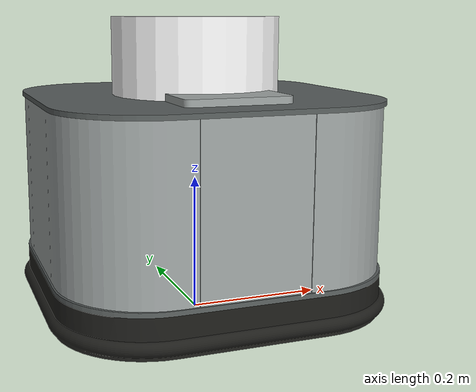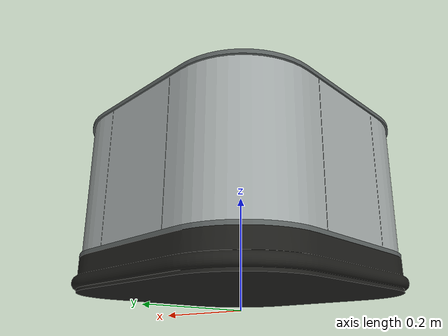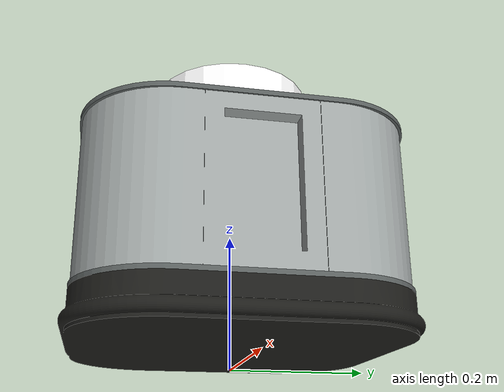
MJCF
<mujoco model="base">
  <compiler angle="radian"/>

  <option integrator="implicitfast"/>

  <default>
    <default class="visual">
      <geom type="mesh" contype="0" conaffinity="0" group="1"/>
    </default>
    <default class="collision">
      <geom type="mesh" group="0"/>
    </default>
  </default>

  <asset>
    <material name="black" rgba="0.11372549 0.11372549 0.10196078 1"/>
    <material name="gray" rgba="0.62745098 0.65098039 0.64705882 1"/>
    <material name="dark_gray" rgba="0.35294118 0.37647059 0.37254902 1"/>
    <mesh name="bumper" file="assets/base/bumper.stl"/>
    <mesh name="bottom_plate" file="assets/base/bottom_plate.stl"/>
    <mesh name="body" file="assets/base/body.stl"/>
    <mesh name="top_plate" file="assets/base/top_plate.stl"/>
    <mesh name="arm_plate" file="assets/base/arm_plate.stl"/>
    <material name="Shell005_001_001_002_001" specular="0.5" shininess="0.45" rgba="1.000000 1.000000 1.000000 1.000000"/>
  </asset>

  <worldbody>
    <body name="base_link">
      <inertial pos="0 0 0.035" mass="60" diaginertia="0.001 0.001 0.001"/>

      <body name="fixed_support" pos="0 0 0.335">
				<geom type="cylinder" pos="0 0 0" size="0.12 0.1 0" group="0" material="Shell005_001_001_002_001"/>
        <geom name="fixed_support" type="cylinder" pos="0 0 0" size="0.12 0.1 0" group="1" material="Shell005_001_001_002_001"/>
        <body name="support" pos="0 0 0.10">
          <site name="center" type="sphere" pos="0 0 0" size="0.01" group="1" rgba="0 0 0 0"/>
        </body>
      </body>

      <body name="wheeled_base" pos="0 0 0">
        <geom name="bump_vis" class="visual" mesh="bumper" material="black"/>
        <geom name="bottom_plate_vis" class="visual" mesh="bottom_plate" material="dark_gray"/>
        <geom name="body_vis" class="visual" mesh="body" material="gray"/>
        <geom name="top_plate_vis" class="visual" mesh="top_plate" material="dark_gray"/>
        <geom name="arm_plate_vis" class="visual" mesh="arm_plate" material="gray"/>
        <geom name="bumper_c" class="collision" mesh="bumper"/>
        <geom name="bottom_plate_c" class="collision" mesh="bottom_plate"/>
        <geom name="body_c" class="collision" mesh="body"/>
        <geom name="top_plate_c" class="collision" mesh="top_plate"/>
        <geom name="arm_plate_c" class="collision" mesh="arm_plate"/>
      </body>
      <joint name="joint_forward" type="slide" axis="0 1 0" frictionloss="250"/>
      <joint name="joint_side" type="slide" axis="1 0 0" frictionloss="250"/>
      <joint name="joint_yaw" type="hinge" axis="0 0 1" frictionloss="250"/>
    </body>
  </worldbody>

  <actuator>
    <velocity ctrllimited="true" ctrlrange="-1.00 1.00" joint="joint_forward" kv="1000" name="actuator_f" forcelimited="true" forcerange="-600 600"/>
		<velocity ctrllimited="true" ctrlrange="-1.00 1.00" joint="joint_side" kv="1000" name="actuator_s" forcelimited="true" forcerange="-600 600"/>
		<velocity ctrllimited="true" ctrlrange="-1.50 1.50" joint="joint_yaw" kv="1500" name="actuator_y" forcelimited="true" forcerange="-600 600"/>
  </actuator>
</mujoco>
